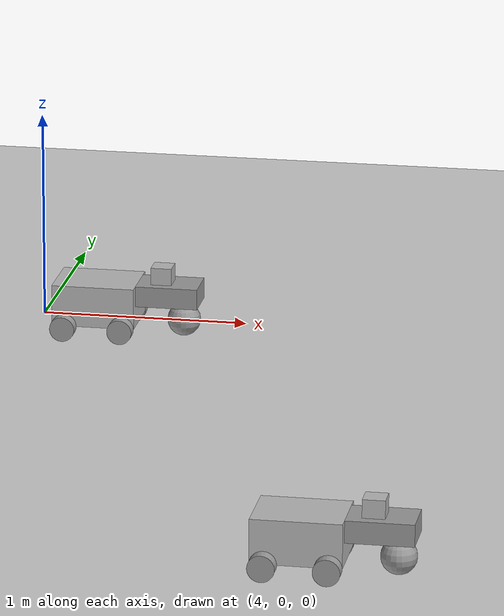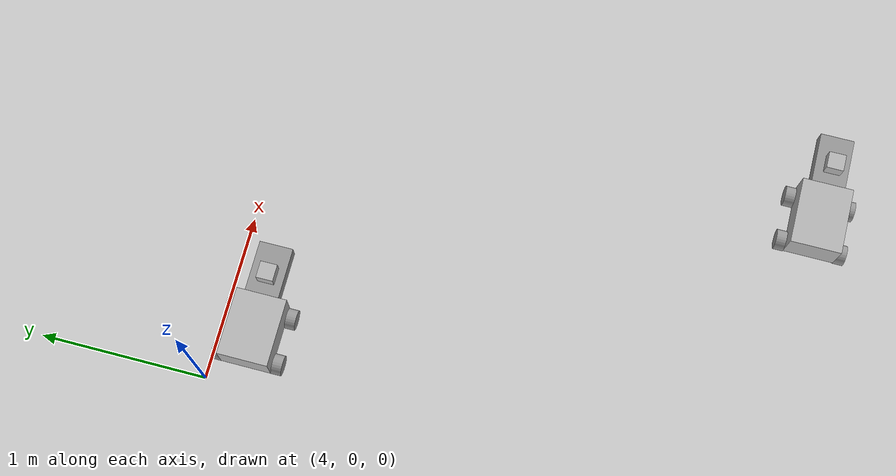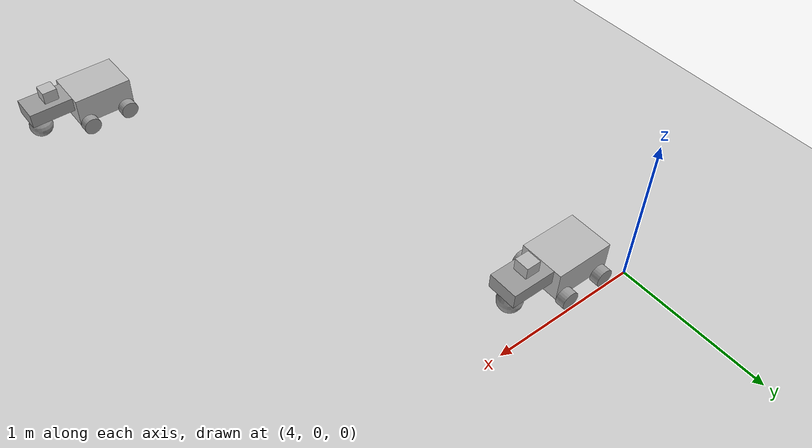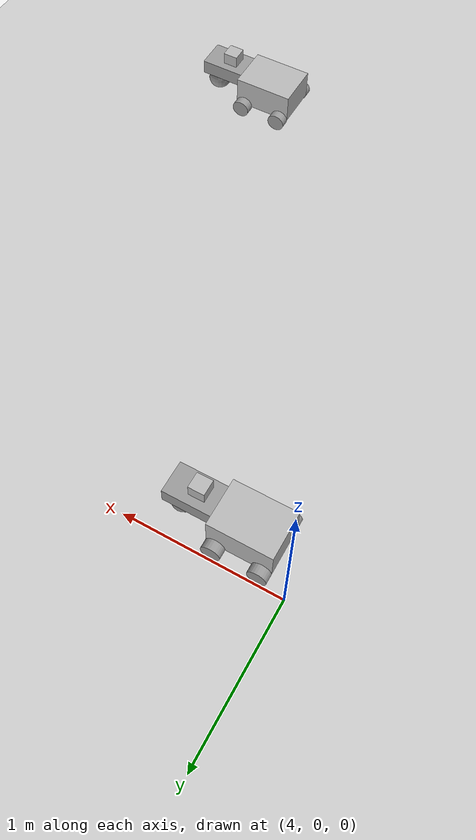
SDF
<sdf version="1.6">
 <world name="default">
  <model name="ground_plane">
   <static>1</static>
   <link name="link">
    <collision name="collision">
     <geometry><plane><normal>0 0 1</normal><size>100 100</size></plane></geometry>
     <surface><friction><ode><mu>100</mu><mu2>50</mu2></ode></friction></surface>
    </collision>
    <visual name="visual">
     <cast_shadows>0</cast_shadows>
     <geometry><plane><normal>0 0 1</normal><size>100 100</size></plane></geometry>
     <material>
      <script><uri>file://media/materials/scripts/gazebo.material</uri><name>Gazebo/Grey</name></script>
     </material>
    </visual>
   </link>
  </model>
  <model name="robot_0">
   <link name="chassis">
    <pose>0 0 0.16 0 -0 0</pose>
    <inertial>
     <mass>1</mass>
     <inertia><ixx>1</ixx><ixy>0</ixy><ixz>0</ixz><iyy>1</iyy><iyz>0</iyz><izz>1</izz></inertia>
    </inertial>
    <visual name="visual">
     <geometry><box><size>0.4 0.3 0.2</size></box></geometry>
     <material>
      <shader type="pixel"><normal_map>__default__</normal_map></shader>
      <emissive>0 0 0 1</emissive>
     </material>
    </visual>
    <collision name="collision">
     <geometry><box><size>0.4 0.3 0.2</size></box></geometry>
     <surface>
      <friction>
       <ode><mu>1</mu><mu2>1</mu2><fdir1>0 0 0</fdir1><slip1>0</slip1><slip2>0</slip2></ode>
       <torsional>
        <coefficient>1</coefficient>
        <patch_radius>0</patch_radius>
        <surface_radius>0</surface_radius>
        <use_patch_radius>1</use_patch_radius>
        <ode><slip>0</slip></ode>
       </torsional>
      </friction>
      <bounce><restitution_coefficient>0</restitution_coefficient><threshold>1e+06</threshold></bounce>
      <contact>
       <collide_without_contact>0</collide_without_contact>
       <collide_without_contact_bitmask>1</collide_without_contact_bitmask>
       <collide_bitmask>1</collide_bitmask>
       <ode>
        <soft_cfm>0</soft_cfm>
        <soft_erp>0.2</soft_erp>
        <kp>1e+13</kp>
        <kd>1</kd>
        <max_vel>0.01</max_vel>
        <min_depth>0</min_depth>
       </ode>
       <bullet>
        <split_impulse>1</split_impulse>
        <split_impulse_penetration_threshold>-0.01</split_impulse_penetration_threshold>
        <soft_cfm>0</soft_cfm>
        <soft_erp>0.2</soft_erp>
        <kp>1e+13</kp>
        <kd>1</kd>
       </bullet>
      </contact>
     </surface>
    </collision>
   </link>
   <link name="link_0_clone">
    <pose>-0.14 -0.180006 0.06 1.5707 -0 0</pose>
    <inertial>
     <mass>1</mass>
     <inertia><ixx>0.145833</ixx><ixy>0</ixy><ixz>0</ixz><iyy>0.145833</iyy><iyz>0</iyz><izz>0.125</izz></inertia>
    </inertial>
    <visual name="visual">
     <geometry><cylinder><radius>0.06</radius><length>0.06</length></cylinder></geometry>
     <material>
      <lighting>1</lighting>
      <script><uri>file://media/materials/scripts/gazebo.material</uri><name>Gazebo/Grey</name></script>
      <shader type="pixel"><normal_map>__default__</normal_map></shader>
      <ambient>0.3 0.3 0.3 1</ambient>
      <diffuse>0.7 0.7 0.7 1</diffuse>
      <specular>0.01 0.01 0.01 1</specular>
      <emissive>0 0 0 1</emissive>
     </material>
    </visual>
    <collision name="collision">
     <geometry><cylinder><radius>0.06</radius><length>0.06</length></cylinder></geometry>
     <surface>
      <friction>
       <ode><mu>1</mu><mu2>1</mu2><fdir1>0 0 0</fdir1><slip1>0</slip1><slip2>0</slip2></ode>
       <torsional>
        <coefficient>1</coefficient>
        <patch_radius>0</patch_radius>
        <surface_radius>0</surface_radius>
        <use_patch_radius>1</use_patch_radius>
        <ode><slip>0</slip></ode>
       </torsional>
      </friction>
      <bounce><restitution_coefficient>0</restitution_coefficient><threshold>1e+06</threshold></bounce>
      <contact>
       <collide_without_contact>0</collide_without_contact>
       <collide_without_contact_bitmask>1</collide_without_contact_bitmask>
       <collide_bitmask>1</collide_bitmask>
       <ode>
        <soft_cfm>0</soft_cfm>
        <soft_erp>0.2</soft_erp>
        <kp>1e+13</kp>
        <kd>1</kd>
        <max_vel>0.01</max_vel>
        <min_depth>0</min_depth>
       </ode>
       <bullet>
        <split_impulse>1</split_impulse>
        <split_impulse_penetration_threshold>-0.01</split_impulse_penetration_threshold>
        <soft_cfm>0</soft_cfm>
        <soft_erp>0.2</soft_erp>
        <kp>1e+13</kp>
        <kd>1</kd>
       </bullet>
      </contact>
     </surface>
    </collision>
   </link>
   <link name="link_0_clone_0">
    <pose>0.14 -0.180006 0.06 1.5707 -0 0</pose>
    <inertial>
     <mass>1</mass>
     <inertia><ixx>0.145833</ixx><ixy>0</ixy><ixz>0</ixz><iyy>0.145833</iyy><iyz>0</iyz><izz>0.125</izz></inertia>
    </inertial>
    <visual name="visual">
     <geometry><cylinder><radius>0.06</radius><length>0.06</length></cylinder></geometry>
     <material>
      <lighting>1</lighting>
      <script><uri>file://media/materials/scripts/gazebo.material</uri><name>Gazebo/Grey</name></script>
      <shader type="pixel"><normal_map>__default__</normal_map></shader>
      <ambient>0.3 0.3 0.3 1</ambient>
      <diffuse>0.7 0.7 0.7 1</diffuse>
      <specular>0.01 0.01 0.01 1</specular>
      <emissive>0 0 0 1</emissive>
     </material>
    </visual>
    <collision name="collision">
     <geometry><cylinder><radius>0.06</radius><length>0.06</length></cylinder></geometry>
     <surface>
      <friction>
       <ode><mu>1</mu><mu2>1</mu2><fdir1>0 0 0</fdir1><slip1>0</slip1><slip2>0</slip2></ode>
       <torsional>
        <coefficient>1</coefficient>
        <patch_radius>0</patch_radius>
        <surface_radius>0</surface_radius>
        <use_patch_radius>1</use_patch_radius>
        <ode><slip>0</slip></ode>
       </torsional>
      </friction>
      <bounce><restitution_coefficient>0</restitution_coefficient><threshold>1e+06</threshold></bounce>
      <contact>
       <collide_without_contact>0</collide_without_contact>
       <collide_without_contact_bitmask>1</collide_without_contact_bitmask>
       <collide_bitmask>1</collide_bitmask>
       <ode>
        <soft_cfm>0</soft_cfm>
        <soft_erp>0.2</soft_erp>
        <kp>1e+13</kp>
        <kd>1</kd>
        <max_vel>0.01</max_vel>
        <min_depth>0</min_depth>
       </ode>
       <bullet>
        <split_impulse>1</split_impulse>
        <split_impulse_penetration_threshold>-0.01</split_impulse_penetration_threshold>
        <soft_cfm>0</soft_cfm>
        <soft_erp>0.2</soft_erp>
        <kp>1e+13</kp>
        <kd>1</kd>
       </bullet>
      </contact>
     </surface>
    </collision>
   </link>
   <link name="link_0_clone_1">
    <pose>-0.14 0.180006 0.06 1.5707 -0 0</pose>
    <inertial>
     <mass>1</mass>
     <inertia><ixx>0.145833</ixx><ixy>0</ixy><ixz>0</ixz><iyy>0.145833</iyy><iyz>0</iyz><izz>0.125</izz></inertia>
    </inertial>
    <visual name="visual">
     <geometry><cylinder><radius>0.06</radius><length>0.06</length></cylinder></geometry>
     <material>
      <lighting>1</lighting>
      <script><uri>file://media/materials/scripts/gazebo.material</uri><name>Gazebo/Grey</name></script>
      <shader type="pixel"><normal_map>__default__</normal_map></shader>
      <ambient>0.3 0.3 0.3 1</ambient>
      <diffuse>0.7 0.7 0.7 1</diffuse>
      <specular>0.01 0.01 0.01 1</specular>
      <emissive>0 0 0 1</emissive>
     </material>
    </visual>
    <collision name="collision">
     <geometry><cylinder><radius>0.06</radius><length>0.06</length></cylinder></geometry>
     <surface>
      <friction>
       <ode><mu>1</mu><mu2>1</mu2><fdir1>0 0 0</fdir1><slip1>0</slip1><slip2>0</slip2></ode>
       <torsional>
        <coefficient>1</coefficient>
        <patch_radius>0</patch_radius>
        <surface_radius>0</surface_radius>
        <use_patch_radius>1</use_patch_radius>
        <ode><slip>0</slip></ode>
       </torsional>
      </friction>
      <bounce><restitution_coefficient>0</restitution_coefficient><threshold>1e+06</threshold></bounce>
      <contact>
       <collide_without_contact>0</collide_without_contact>
       <collide_without_contact_bitmask>1</collide_without_contact_bitmask>
       <collide_bitmask>1</collide_bitmask>
       <ode>
        <soft_cfm>0</soft_cfm>
        <soft_erp>0.2</soft_erp>
        <kp>1e+13</kp>
        <kd>1</kd>
        <max_vel>0.01</max_vel>
        <min_depth>0</min_depth>
       </ode>
       <bullet>
        <split_impulse>1</split_impulse>
        <split_impulse_penetration_threshold>-0.01</split_impulse_penetration_threshold>
        <soft_cfm>0</soft_cfm>
        <soft_erp>0.2</soft_erp>
        <kp>1e+13</kp>
        <kd>1</kd>
       </bullet>
      </contact>
     </surface>
    </collision>
   </link>
   <link name="link_0_clone_2">
    <pose>0.14 0.180006 0.06 1.5707 -0 0</pose>
    <inertial>
     <mass>1</mass>
     <inertia><ixx>0.145833</ixx><ixy>0</ixy><ixz>0</ixz><iyy>0.145833</iyy><iyz>0</iyz><izz>0.125</izz></inertia>
    </inertial>
    <visual name="visual">
     <geometry><cylinder><radius>0.06</radius><length>0.06</length></cylinder></geometry>
     <material>
      <lighting>1</lighting>
      <script><uri>file://media/materials/scripts/gazebo.material</uri><name>Gazebo/Grey</name></script>
      <shader type="pixel"><normal_map>__default__</normal_map></shader>
      <ambient>0.3 0.3 0.3 1</ambient>
      <diffuse>0.7 0.7 0.7 1</diffuse>
      <specular>0.01 0.01 0.01 1</specular>
      <emissive>0 0 0 1</emissive>
     </material>
    </visual>
    <collision name="collision">
     <geometry><cylinder><radius>0.06</radius><length>0.06</length></cylinder></geometry>
     <surface>
      <friction>
       <ode><mu>1</mu><mu2>1</mu2><fdir1>0 0 0</fdir1><slip1>0</slip1><slip2>0</slip2></ode>
       <torsional>
        <coefficient>1</coefficient>
        <patch_radius>0</patch_radius>
        <surface_radius>0</surface_radius>
        <use_patch_radius>1</use_patch_radius>
        <ode><slip>0</slip></ode>
       </torsional>
      </friction>
      <bounce><restitution_coefficient>0</restitution_coefficient><threshold>1e+06</threshold></bounce>
      <contact>
       <collide_without_contact>0</collide_without_contact>
       <collide_without_contact_bitmask>1</collide_without_contact_bitmask>
       <collide_bitmask>1</collide_bitmask>
       <ode>
        <soft_cfm>0</soft_cfm>
        <soft_erp>0.2</soft_erp>
        <kp>1e+13</kp>
        <kd>1</kd>
        <max_vel>0.01</max_vel>
        <min_depth>0</min_depth>
       </ode>
       <bullet>
        <split_impulse>1</split_impulse>
        <split_impulse_penetration_threshold>-0.01</split_impulse_penetration_threshold>
        <soft_cfm>0</soft_cfm>
        <soft_erp>0.2</soft_erp>
        <kp>1e+13</kp>
        <kd>1</kd>
       </bullet>
      </contact>
     </surface>
    </collision>
   </link>
   <link name="link_1_clone">
    <pose>0.35 0 0.21 0 -0 0</pose>
    <inertial>
     <mass>1</mass>
     <inertia>
      <ixx>0.166667</ixx>
      <ixy>0</ixy>
      <ixz>0</ixz>
      <iyy>0.166667</iyy>
      <iyz>0</iyz>
      <izz>0.166667</izz>
     </inertia>
    </inertial>
    <visual name="visual">
     <geometry><box><size>0.3 0.2 0.1</size></box></geometry>
     <material>
      <lighting>1</lighting>
      <script><uri>file://media/materials/scripts/gazebo.material</uri><name>Gazebo/Grey</name></script>
      <shader type="pixel"><normal_map>__default__</normal_map></shader>
      <ambient>0.3 0.3 0.3 1</ambient>
      <diffuse>0.7 0.7 0.7 1</diffuse>
      <specular>0.01 0.01 0.01 1</specular>
      <emissive>0 0 0 1</emissive>
     </material>
    </visual>
    <collision name="collision">
     <geometry><box><size>0.3 0.2 0.1</size></box></geometry>
     <surface>
      <friction>
       <ode><mu>1</mu><mu2>1</mu2><fdir1>0 0 0</fdir1><slip1>0</slip1><slip2>0</slip2></ode>
       <torsional>
        <coefficient>1</coefficient>
        <patch_radius>0</patch_radius>
        <surface_radius>0</surface_radius>
        <use_patch_radius>1</use_patch_radius>
        <ode><slip>0</slip></ode>
       </torsional>
      </friction>
      <bounce><restitution_coefficient>0</restitution_coefficient><threshold>1e+06</threshold></bounce>
      <contact>
       <collide_without_contact>0</collide_without_contact>
       <collide_without_contact_bitmask>1</collide_without_contact_bitmask>
       <collide_bitmask>1</collide_bitmask>
       <ode>
        <soft_cfm>0</soft_cfm>
        <soft_erp>0.2</soft_erp>
        <kp>1e+13</kp>
        <kd>1</kd>
        <max_vel>0.01</max_vel>
        <min_depth>0</min_depth>
       </ode>
       <bullet>
        <split_impulse>1</split_impulse>
        <split_impulse_penetration_threshold>-0.01</split_impulse_penetration_threshold>
        <soft_cfm>0</soft_cfm>
        <soft_erp>0.2</soft_erp>
        <kp>1e+13</kp>
        <kd>1</kd>
       </bullet>
      </contact>
     </surface>
    </collision>
   </link>
   <link name="link_2_clone">
    <pose>0.42 0 0.08 0 -0 0</pose>
    <inertial>
     <mass>1</mass>
     <inertia><ixx>0.1</ixx><ixy>0</ixy><ixz>0</ixz><iyy>0.1</iyy><iyz>0</iyz><izz>0.1</izz></inertia>
    </inertial>
    <visual name="visual">
     <geometry><sphere><radius>0.08</radius></sphere></geometry>
     <material>
      <lighting>1</lighting>
      <script><uri>file://media/materials/scripts/gazebo.material</uri><name>Gazebo/Grey</name></script>
      <shader type="pixel"><normal_map>__default__</normal_map></shader>
      <ambient>0.3 0.3 0.3 1</ambient>
      <diffuse>0.7 0.7 0.7 1</diffuse>
      <specular>0.01 0.01 0.01 1</specular>
      <emissive>0 0 0 1</emissive>
     </material>
    </visual>
    <collision name="collision">
     <geometry><sphere><radius>0.08</radius></sphere></geometry>
     <surface>
      <friction>
       <ode><mu>1</mu><mu2>1</mu2><fdir1>0 0 0</fdir1><slip1>0</slip1><slip2>0</slip2></ode>
       <torsional>
        <coefficient>1</coefficient>
        <patch_radius>0</patch_radius>
        <surface_radius>0</surface_radius>
        <use_patch_radius>1</use_patch_radius>
        <ode><slip>0</slip></ode>
       </torsional>
      </friction>
      <bounce><restitution_coefficient>0</restitution_coefficient><threshold>1e+06</threshold></bounce>
      <contact>
       <collide_without_contact>0</collide_without_contact>
       <collide_without_contact_bitmask>1</collide_without_contact_bitmask>
       <collide_bitmask>1</collide_bitmask>
       <ode>
        <soft_cfm>0</soft_cfm>
        <soft_erp>0.2</soft_erp>
        <kp>1e+13</kp>
        <kd>1</kd>
        <max_vel>0.01</max_vel>
        <min_depth>0</min_depth>
       </ode>
       <bullet>
        <split_impulse>1</split_impulse>
        <split_impulse_penetration_threshold>-0.01</split_impulse_penetration_threshold>
        <soft_cfm>0</soft_cfm>
        <soft_erp>0.2</soft_erp>
        <kp>1e+13</kp>
        <kd>1</kd>
       </bullet>
      </contact>
     </surface>
    </collision>
   </link>
   <model name="depth_camera">
    <link name="link">
     <pose>0 0 0.05 0 -0 0</pose>
     <inertial>
      <mass>0.1</mass>
      <inertia>
       <ixx>0.000166667</ixx>
       <iyy>0.000166667</iyy>
       <izz>0.000166667</izz>
       <ixy>0</ixy>
       <ixz>0</ixz>
       <iyz>0</iyz>
      </inertia>
     </inertial>
     <collision name="collision"><geometry><box><size>0.1 0.1 0.1</size></box></geometry></collision>
     <visual name="visual"><geometry><box><size>0.1 0.1 0.1</size></box></geometry></visual>
     <sensor name="camera" type="depth">
      <camera name="__default__">
       <horizontal_fov>1.047</horizontal_fov>
       <image><width>320</width><height>240</height></image>
       <clip><near>0.1</near><far>100</far></clip>
      </camera>
      <always_on>1</always_on>
      <update_rate>30</update_rate>
      <visualize>1</visualize>
     </sensor>
    </link>
    <pose>0.31707 -0.004098 0.243439 0 -0 0</pose>
   </model>
   <joint name="chassis_JOINT_0" type="revolute">
    <parent>chassis</parent>
    <child>link_0_clone_0</child>
    <axis>
     <xyz>0 0 -1</xyz>
     <use_parent_model_frame>0</use_parent_model_frame>
     <limit>
      <lower>-1.79769e+308</lower>
      <upper>1.79769e+308</upper>
      <effort>-1</effort>
      <velocity>-1</velocity>
     </limit>
     <dynamics>
      <spring_reference>0</spring_reference>
      <spring_stiffness>0</spring_stiffness>
      <damping>0</damping>
     </dynamics>
    </axis>
    <physics>
     <ode><limit><cfm>0</cfm><erp>0.2</erp></limit><suspension><cfm>0</cfm><erp>0.2</erp></suspension></ode>
    </physics>
   </joint>
   <joint name="chassis_JOINT_1" type="revolute">
    <parent>chassis</parent>
    <child>link_0_clone</child>
    <axis>
     <xyz>0 0 -1</xyz>
     <use_parent_model_frame>0</use_parent_model_frame>
     <limit>
      <lower>-1.79769e+308</lower>
      <upper>1.79769e+308</upper>
      <effort>-1</effort>
      <velocity>-1</velocity>
     </limit>
     <dynamics>
      <spring_reference>0</spring_reference>
      <spring_stiffness>0</spring_stiffness>
      <damping>0</damping>
     </dynamics>
    </axis>
    <physics>
     <ode><limit><cfm>0</cfm><erp>0.2</erp></limit><suspension><cfm>0</cfm><erp>0.2</erp></suspension></ode>
    </physics>
   </joint>
   <joint name="chassis_JOINT_2" type="revolute">
    <parent>chassis</parent>
    <child>link_0_clone_2</child>
    <axis>
     <xyz>0 0 1</xyz>
     <use_parent_model_frame>0</use_parent_model_frame>
     <limit>
      <lower>-1.79769e+308</lower>
      <upper>1.79769e+308</upper>
      <effort>-1</effort>
      <velocity>-1</velocity>
     </limit>
     <dynamics>
      <spring_reference>0</spring_reference>
      <spring_stiffness>0</spring_stiffness>
      <damping>0</damping>
     </dynamics>
    </axis>
    <physics>
     <ode><limit><cfm>0</cfm><erp>0.2</erp></limit><suspension><cfm>0</cfm><erp>0.2</erp></suspension></ode>
    </physics>
   </joint>
   <joint name="chassis_JOINT_3" type="revolute">
    <parent>chassis</parent>
    <child>link_0_clone_1</child>
    <axis>
     <xyz>0 0 1</xyz>
     <use_parent_model_frame>0</use_parent_model_frame>
     <limit>
      <lower>-1.79769e+308</lower>
      <upper>1.79769e+308</upper>
      <effort>-1</effort>
      <velocity>-1</velocity>
     </limit>
     <dynamics>
      <spring_reference>0</spring_reference>
      <spring_stiffness>0</spring_stiffness>
      <damping>0</damping>
     </dynamics>
    </axis>
    <physics>
     <ode><limit><cfm>0</cfm><erp>0.2</erp></limit><suspension><cfm>0</cfm><erp>0.2</erp></suspension></ode>
    </physics>
   </joint>
   <joint name="chassis_JOINT_4" type="fixed">
    <parent>chassis</parent>
    <child>link_1_clone</child>
    <physics>
     <ode><limit><cfm>0</cfm><erp>0.2</erp></limit><suspension><cfm>0</cfm><erp>0.2</erp></suspension></ode>
    </physics>
   </joint>
   <joint name="link_JOINT_6" type="fixed">
    <parent>depth_camera::link</parent>
    <child>link_1_clone</child>
    <physics>
     <ode><limit><cfm>0</cfm><erp>0.2</erp></limit><suspension><cfm>0</cfm><erp>0.2</erp></suspension></ode>
    </physics>
   </joint>
   <joint name="link_1_clone_JOINT_5" type="ball">
    <parent>link_1_clone</parent>
    <child>link_2_clone</child>
    <physics>
     <ode><limit><cfm>0</cfm><erp>0.2</erp></limit><suspension><cfm>0</cfm><erp>0.2</erp></suspension></ode>
    </physics>
   </joint>
   <static>1</static>
   <pose>4.31303 -0.218613 0 0 -0 0</pose>
  </model>
  <model name="robot_1">
   <link name="chassis">
    <pose>0 0 0.16 0 -0 0</pose>
    <inertial>
     <mass>1</mass>
     <inertia><ixx>1</ixx><ixy>0</ixy><ixz>0</ixz><iyy>1</iyy><iyz>0</iyz><izz>1</izz></inertia>
    </inertial>
    <visual name="visual">
     <geometry><box><size>0.4 0.3 0.2</size></box></geometry>
     <material>
      <shader type="pixel"><normal_map>__default__</normal_map></shader>
      <emissive>0 0 0 1</emissive>
     </material>
    </visual>
    <collision name="collision">
     <geometry><box><size>0.4 0.3 0.2</size></box></geometry>
     <surface>
      <friction>
       <ode><mu>1</mu><mu2>1</mu2><fdir1>0 0 0</fdir1><slip1>0</slip1><slip2>0</slip2></ode>
       <torsional>
        <coefficient>1</coefficient>
        <patch_radius>0</patch_radius>
        <surface_radius>0</surface_radius>
        <use_patch_radius>1</use_patch_radius>
        <ode><slip>0</slip></ode>
       </torsional>
      </friction>
      <bounce><restitution_coefficient>0</restitution_coefficient><threshold>1e+06</threshold></bounce>
      <contact>
       <collide_without_contact>0</collide_without_contact>
       <collide_without_contact_bitmask>1</collide_without_contact_bitmask>
       <collide_bitmask>1</collide_bitmask>
       <ode>
        <soft_cfm>0</soft_cfm>
        <soft_erp>0.2</soft_erp>
        <kp>1e+13</kp>
        <kd>1</kd>
        <max_vel>0.01</max_vel>
        <min_depth>0</min_depth>
       </ode>
       <bullet>
        <split_impulse>1</split_impulse>
        <split_impulse_penetration_threshold>-0.01</split_impulse_penetration_threshold>
        <soft_cfm>0</soft_cfm>
        <soft_erp>0.2</soft_erp>
        <kp>1e+13</kp>
        <kd>1</kd>
       </bullet>
      </contact>
     </surface>
    </collision>
   </link>
   <link name="link_0_clone">
    <pose>-0.14 -0.180006 0.06 1.5707 -0 0</pose>
    <inertial>
     <mass>1</mass>
     <inertia><ixx>0.145833</ixx><ixy>0</ixy><ixz>0</ixz><iyy>0.145833</iyy><iyz>0</iyz><izz>0.125</izz></inertia>
    </inertial>
    <visual name="visual">
     <geometry><cylinder><radius>0.06</radius><length>0.06</length></cylinder></geometry>
     <material>
      <lighting>1</lighting>
      <script><uri>file://media/materials/scripts/gazebo.material</uri><name>Gazebo/Grey</name></script>
      <shader type="pixel"><normal_map>__default__</normal_map></shader>
      <ambient>0.3 0.3 0.3 1</ambient>
      <diffuse>0.7 0.7 0.7 1</diffuse>
      <specular>0.01 0.01 0.01 1</specular>
      <emissive>0 0 0 1</emissive>
     </material>
    </visual>
    <collision name="collision">
     <geometry><cylinder><radius>0.06</radius><length>0.06</length></cylinder></geometry>
     <surface>
      <friction>
       <ode><mu>1</mu><mu2>1</mu2><fdir1>0 0 0</fdir1><slip1>0</slip1><slip2>0</slip2></ode>
       <torsional>
        <coefficient>1</coefficient>
        <patch_radius>0</patch_radius>
        <surface_radius>0</surface_radius>
        <use_patch_radius>1</use_patch_radius>
        <ode><slip>0</slip></ode>
       </torsional>
      </friction>
      <bounce><restitution_coefficient>0</restitution_coefficient><threshold>1e+06</threshold></bounce>
      <contact>
       <collide_without_contact>0</collide_without_contact>
       <collide_without_contact_bitmask>1</collide_without_contact_bitmask>
       <collide_bitmask>1</collide_bitmask>
       <ode>
        <soft_cfm>0</soft_cfm>
        <soft_erp>0.2</soft_erp>
        <kp>1e+13</kp>
        <kd>1</kd>
        <max_vel>0.01</max_vel>
        <min_depth>0</min_depth>
       </ode>
       <bullet>
        <split_impulse>1</split_impulse>
        <split_impulse_penetration_threshold>-0.01</split_impulse_penetration_threshold>
        <soft_cfm>0</soft_cfm>
        <soft_erp>0.2</soft_erp>
        <kp>1e+13</kp>
        <kd>1</kd>
       </bullet>
      </contact>
     </surface>
    </collision>
   </link>
   <link name="link_0_clone_0">
    <pose>0.14 -0.180006 0.06 1.5707 -0 0</pose>
    <inertial>
     <mass>1</mass>
     <inertia><ixx>0.145833</ixx><ixy>0</ixy><ixz>0</ixz><iyy>0.145833</iyy><iyz>0</iyz><izz>0.125</izz></inertia>
    </inertial>
    <visual name="visual">
     <geometry><cylinder><radius>0.06</radius><length>0.06</length></cylinder></geometry>
     <material>
      <lighting>1</lighting>
      <script><uri>file://media/materials/scripts/gazebo.material</uri><name>Gazebo/Grey</name></script>
      <shader type="pixel"><normal_map>__default__</normal_map></shader>
      <ambient>0.3 0.3 0.3 1</ambient>
      <diffuse>0.7 0.7 0.7 1</diffuse>
      <specular>0.01 0.01 0.01 1</specular>
      <emissive>0 0 0 1</emissive>
     </material>
    </visual>
    <collision name="collision">
     <geometry><cylinder><radius>0.06</radius><length>0.06</length></cylinder></geometry>
     <surface>
      <friction>
       <ode><mu>1</mu><mu2>1</mu2><fdir1>0 0 0</fdir1><slip1>0</slip1><slip2>0</slip2></ode>
       <torsional>
        <coefficient>1</coefficient>
        <patch_radius>0</patch_radius>
        <surface_radius>0</surface_radius>
        <use_patch_radius>1</use_patch_radius>
        <ode><slip>0</slip></ode>
       </torsional>
      </friction>
      <bounce><restitution_coefficient>0</restitution_coefficient><threshold>1e+06</threshold></bounce>
      <contact>
       <collide_without_contact>0</collide_without_contact>
       <collide_without_contact_bitmask>1</collide_without_contact_bitmask>
       <collide_bitmask>1</collide_bitmask>
       <ode>
        <soft_cfm>0</soft_cfm>
        <soft_erp>0.2</soft_erp>
        <kp>1e+13</kp>
        <kd>1</kd>
        <max_vel>0.01</max_vel>
        <min_depth>0</min_depth>
       </ode>
       <bullet>
        <split_impulse>1</split_impulse>
        <split_impulse_penetration_threshold>-0.01</split_impulse_penetration_threshold>
        <soft_cfm>0</soft_cfm>
        <soft_erp>0.2</soft_erp>
        <kp>1e+13</kp>
        <kd>1</kd>
       </bullet>
      </contact>
     </surface>
    </collision>
   </link>
   <link name="link_0_clone_1">
    <pose>-0.14 0.180006 0.06 1.5707 -0 0</pose>
    <inertial>
     <mass>1</mass>
     <inertia><ixx>0.145833</ixx><ixy>0</ixy><ixz>0</ixz><iyy>0.145833</iyy><iyz>0</iyz><izz>0.125</izz></inertia>
    </inertial>
    <visual name="visual">
     <geometry><cylinder><radius>0.06</radius><length>0.06</length></cylinder></geometry>
     <material>
      <lighting>1</lighting>
      <script><uri>file://media/materials/scripts/gazebo.material</uri><name>Gazebo/Grey</name></script>
      <shader type="pixel"><normal_map>__default__</normal_map></shader>
      <ambient>0.3 0.3 0.3 1</ambient>
      <diffuse>0.7 0.7 0.7 1</diffuse>
      <specular>0.01 0.01 0.01 1</specular>
      <emissive>0 0 0 1</emissive>
     </material>
    </visual>
    <collision name="collision">
     <geometry><cylinder><radius>0.06</radius><length>0.06</length></cylinder></geometry>
     <surface>
      <friction>
       <ode><mu>1</mu><mu2>1</mu2><fdir1>0 0 0</fdir1><slip1>0</slip1><slip2>0</slip2></ode>
       <torsional>
        <coefficient>1</coefficient>
        <patch_radius>0</patch_radius>
        <surface_radius>0</surface_radius>
        <use_patch_radius>1</use_patch_radius>
        <ode><slip>0</slip></ode>
       </torsional>
      </friction>
      <bounce><restitution_coefficient>0</restitution_coefficient><threshold>1e+06</threshold></bounce>
      <contact>
       <collide_without_contact>0</collide_without_contact>
       <collide_without_contact_bitmask>1</collide_without_contact_bitmask>
       <collide_bitmask>1</collide_bitmask>
       <ode>
        <soft_cfm>0</soft_cfm>
        <soft_erp>0.2</soft_erp>
        <kp>1e+13</kp>
        <kd>1</kd>
        <max_vel>0.01</max_vel>
        <min_depth>0</min_depth>
       </ode>
       <bullet>
        <split_impulse>1</split_impulse>
        <split_impulse_penetration_threshold>-0.01</split_impulse_penetration_threshold>
        <soft_cfm>0</soft_cfm>
        <soft_erp>0.2</soft_erp>
        <kp>1e+13</kp>
        <kd>1</kd>
       </bullet>
      </contact>
     </surface>
    </collision>
   </link>
   <link name="link_0_clone_2">
    <pose>0.14 0.180006 0.06 1.5707 -0 0</pose>
    <inertial>
     <mass>1</mass>
     <inertia><ixx>0.145833</ixx><ixy>0</ixy><ixz>0</ixz><iyy>0.145833</iyy><iyz>0</iyz><izz>0.125</izz></inertia>
    </inertial>
    <visual name="visual">
     <geometry><cylinder><radius>0.06</radius><length>0.06</length></cylinder></geometry>
     <material>
      <lighting>1</lighting>
      <script><uri>file://media/materials/scripts/gazebo.material</uri><name>Gazebo/Grey</name></script>
      <shader type="pixel"><normal_map>__default__</normal_map></shader>
      <ambient>0.3 0.3 0.3 1</ambient>
      <diffuse>0.7 0.7 0.7 1</diffuse>
      <specular>0.01 0.01 0.01 1</specular>
      <emissive>0 0 0 1</emissive>
     </material>
    </visual>
    <collision name="collision">
     <geometry><cylinder><radius>0.06</radius><length>0.06</length></cylinder></geometry>
     <surface>
      <friction>
       <ode><mu>1</mu><mu2>1</mu2><fdir1>0 0 0</fdir1><slip1>0</slip1><slip2>0</slip2></ode>
       <torsional>
        <coefficient>1</coefficient>
        <patch_radius>0</patch_radius>
        <surface_radius>0</surface_radius>
        <use_patch_radius>1</use_patch_radius>
        <ode><slip>0</slip></ode>
       </torsional>
      </friction>
      <bounce><restitution_coefficient>0</restitution_coefficient><threshold>1e+06</threshold></bounce>
      <contact>
       <collide_without_contact>0</collide_without_contact>
       <collide_without_contact_bitmask>1</collide_without_contact_bitmask>
       <collide_bitmask>1</collide_bitmask>
       <ode>
        <soft_cfm>0</soft_cfm>
        <soft_erp>0.2</soft_erp>
        <kp>1e+13</kp>
        <kd>1</kd>
        <max_vel>0.01</max_vel>
        <min_depth>0</min_depth>
       </ode>
       <bullet>
        <split_impulse>1</split_impulse>
        <split_impulse_penetration_threshold>-0.01</split_impulse_penetration_threshold>
        <soft_cfm>0</soft_cfm>
        <soft_erp>0.2</soft_erp>
        <kp>1e+13</kp>
        <kd>1</kd>
       </bullet>
      </contact>
     </surface>
    </collision>
   </link>
   <link name="link_1_clone">
    <pose>0.35 0 0.21 0 -0 0</pose>
    <inertial>
     <mass>1</mass>
     <inertia>
      <ixx>0.166667</ixx>
      <ixy>0</ixy>
      <ixz>0</ixz>
      <iyy>0.166667</iyy>
      <iyz>0</iyz>
      <izz>0.166667</izz>
     </inertia>
    </inertial>
    <visual name="visual">
     <geometry><box><size>0.3 0.2 0.1</size></box></geometry>
     <material>
      <lighting>1</lighting>
      <script><uri>file://media/materials/scripts/gazebo.material</uri><name>Gazebo/Grey</name></script>
      <shader type="pixel"><normal_map>__default__</normal_map></shader>
      <ambient>0.3 0.3 0.3 1</ambient>
      <diffuse>0.7 0.7 0.7 1</diffuse>
      <specular>0.01 0.01 0.01 1</specular>
      <emissive>0 0 0 1</emissive>
     </material>
    </visual>
    <collision name="collision">
     <geometry><box><size>0.3 0.2 0.1</size></box></geometry>
     <surface>
      <friction>
       <ode><mu>1</mu><mu2>1</mu2><fdir1>0 0 0</fdir1><slip1>0</slip1><slip2>0</slip2></ode>
       <torsional>
        <coefficient>1</coefficient>
        <patch_radius>0</patch_radius>
        <surface_radius>0</surface_radius>
        <use_patch_radius>1</use_patch_radius>
        <ode><slip>0</slip></ode>
       </torsional>
      </friction>
      <bounce><restitution_coefficient>0</restitution_coefficient><threshold>1e+06</threshold></bounce>
      <contact>
       <collide_without_contact>0</collide_without_contact>
       <collide_without_contact_bitmask>1</collide_without_contact_bitmask>
       <collide_bitmask>1</collide_bitmask>
       <ode>
        <soft_cfm>0</soft_cfm>
        <soft_erp>0.2</soft_erp>
        <kp>1e+13</kp>
        <kd>1</kd>
        <max_vel>0.01</max_vel>
        <min_depth>0</min_depth>
       </ode>
       <bullet>
        <split_impulse>1</split_impulse>
        <split_impulse_penetration_threshold>-0.01</split_impulse_penetration_threshold>
        <soft_cfm>0</soft_cfm>
        <soft_erp>0.2</soft_erp>
        <kp>1e+13</kp>
        <kd>1</kd>
       </bullet>
      </contact>
     </surface>
    </collision>
   </link>
   <link name="link_2_clone">
    <pose>0.42 0 0.08 0 -0 0</pose>
    <inertial>
     <mass>1</mass>
     <inertia><ixx>0.1</ixx><ixy>0</ixy><ixz>0</ixz><iyy>0.1</iyy><iyz>0</iyz><izz>0.1</izz></inertia>
    </inertial>
    <visual name="visual">
     <geometry><sphere><radius>0.08</radius></sphere></geometry>
     <material>
      <lighting>1</lighting>
      <script><uri>file://media/materials/scripts/gazebo.material</uri><name>Gazebo/Grey</name></script>
      <shader type="pixel"><normal_map>__default__</normal_map></shader>
      <ambient>0.3 0.3 0.3 1</ambient>
      <diffuse>0.7 0.7 0.7 1</diffuse>
      <specular>0.01 0.01 0.01 1</specular>
      <emissive>0 0 0 1</emissive>
     </material>
    </visual>
    <collision name="collision">
     <geometry><sphere><radius>0.08</radius></sphere></geometry>
     <surface>
      <friction>
       <ode><mu>1</mu><mu2>1</mu2><fdir1>0 0 0</fdir1><slip1>0</slip1><slip2>0</slip2></ode>
       <torsional>
        <coefficient>1</coefficient>
        <patch_radius>0</patch_radius>
        <surface_radius>0</surface_radius>
        <use_patch_radius>1</use_patch_radius>
        <ode><slip>0</slip></ode>
       </torsional>
      </friction>
      <bounce><restitution_coefficient>0</restitution_coefficient><threshold>1e+06</threshold></bounce>
      <contact>
       <collide_without_contact>0</collide_without_contact>
       <collide_without_contact_bitmask>1</collide_without_contact_bitmask>
       <collide_bitmask>1</collide_bitmask>
       <ode>
        <soft_cfm>0</soft_cfm>
        <soft_erp>0.2</soft_erp>
        <kp>1e+13</kp>
        <kd>1</kd>
        <max_vel>0.01</max_vel>
        <min_depth>0</min_depth>
       </ode>
       <bullet>
        <split_impulse>1</split_impulse>
        <split_impulse_penetration_threshold>-0.01</split_impulse_penetration_threshold>
        <soft_cfm>0</soft_cfm>
        <soft_erp>0.2</soft_erp>
        <kp>1e+13</kp>
        <kd>1</kd>
       </bullet>
      </contact>
     </surface>
    </collision>
   </link>
   <model name="depth_camera">
    <link name="link">
     <pose>0 0 0.05 0 -0 0</pose>
     <inertial>
      <mass>0.1</mass>
      <inertia>
       <ixx>0.000166667</ixx>
       <iyy>0.000166667</iyy>
       <izz>0.000166667</izz>
       <ixy>0</ixy>
       <ixz>0</ixz>
       <iyz>0</iyz>
      </inertia>
     </inertial>
     <collision name="collision"><geometry><box><size>0.1 0.1 0.1</size></box></geometry></collision>
     <visual name="visual"><geometry><box><size>0.1 0.1 0.1</size></box></geometry></visual>
     <sensor name="camera" type="depth">
      <camera name="__default__">
       <horizontal_fov>1.047</horizontal_fov>
       <image><width>320</width><height>240</height></image>
       <clip><near>0.1</near><far>100</far></clip>
      </camera>
      <always_on>1</always_on>
      <update_rate>30</update_rate>
      <visualize>1</visualize>
     </sensor>
    </link>
    <pose>0.31707 -0.004098 0.243439 0 -0 0</pose>
   </model>
   <joint name="chassis_JOINT_0" type="revolute">
    <parent>chassis</parent>
    <child>link_0_clone_0</child>
    <axis>
     <xyz>0 0 -1</xyz>
     <use_parent_model_frame>0</use_parent_model_frame>
     <limit>
      <lower>-1.79769e+308</lower>
      <upper>1.79769e+308</upper>
      <effort>-1</effort>
      <velocity>-1</velocity>
     </limit>
     <dynamics>
      <spring_reference>0</spring_reference>
      <spring_stiffness>0</spring_stiffness>
      <damping>0</damping>
     </dynamics>
    </axis>
    <physics>
     <ode><limit><cfm>0</cfm><erp>0.2</erp></limit><suspension><cfm>0</cfm><erp>0.2</erp></suspension></ode>
    </physics>
   </joint>
   <joint name="chassis_JOINT_1" type="revolute">
    <parent>chassis</parent>
    <child>link_0_clone</child>
    <axis>
     <xyz>0 0 -1</xyz>
     <use_parent_model_frame>0</use_parent_model_frame>
     <limit>
      <lower>-1.79769e+308</lower>
      <upper>1.79769e+308</upper>
      <effort>-1</effort>
      <velocity>-1</velocity>
     </limit>
     <dynamics>
      <spring_reference>0</spring_reference>
      <spring_stiffness>0</spring_stiffness>
      <damping>0</damping>
     </dynamics>
    </axis>
    <physics>
     <ode><limit><cfm>0</cfm><erp>0.2</erp></limit><suspension><cfm>0</cfm><erp>0.2</erp></suspension></ode>
    </physics>
   </joint>
   <joint name="chassis_JOINT_2" type="revolute">
    <parent>chassis</parent>
    <child>link_0_clone_2</child>
    <axis>
     <xyz>0 0 1</xyz>
     <use_parent_model_frame>0</use_parent_model_frame>
     <limit>
      <lower>-1.79769e+308</lower>
      <upper>1.79769e+308</upper>
      <effort>-1</effort>
      <velocity>-1</velocity>
     </limit>
     <dynamics>
      <spring_reference>0</spring_reference>
      <spring_stiffness>0</spring_stiffness>
      <damping>0</damping>
     </dynamics>
    </axis>
    <physics>
     <ode><limit><cfm>0</cfm><erp>0.2</erp></limit><suspension><cfm>0</cfm><erp>0.2</erp></suspension></ode>
    </physics>
   </joint>
   <joint name="chassis_JOINT_3" type="revolute">
    <parent>chassis</parent>
    <child>link_0_clone_1</child>
    <axis>
     <xyz>0 0 1</xyz>
     <use_parent_model_frame>0</use_parent_model_frame>
     <limit>
      <lower>-1.79769e+308</lower>
      <upper>1.79769e+308</upper>
      <effort>-1</effort>
      <velocity>-1</velocity>
     </limit>
     <dynamics>
      <spring_reference>0</spring_reference>
      <spring_stiffness>0</spring_stiffness>
      <damping>0</damping>
     </dynamics>
    </axis>
    <physics>
     <ode><limit><cfm>0</cfm><erp>0.2</erp></limit><suspension><cfm>0</cfm><erp>0.2</erp></suspension></ode>
    </physics>
   </joint>
   <joint name="chassis_JOINT_4" type="fixed">
    <parent>chassis</parent>
    <child>link_1_clone</child>
    <physics>
     <ode><limit><cfm>0</cfm><erp>0.2</erp></limit><suspension><cfm>0</cfm><erp>0.2</erp></suspension></ode>
    </physics>
   </joint>
   <joint name="link_JOINT_6" type="fixed">
    <parent>depth_camera::link</parent>
    <child>link_1_clone</child>
    <physics>
     <ode><limit><cfm>0</cfm><erp>0.2</erp></limit><suspension><cfm>0</cfm><erp>0.2</erp></suspension></ode>
    </physics>
   </joint>
   <joint name="link_1_clone_JOINT_5" type="ball">
    <parent>link_1_clone</parent>
    <child>link_2_clone</child>
    <physics>
     <ode><limit><cfm>0</cfm><erp>0.2</erp></limit><suspension><cfm>0</cfm><erp>0.2</erp></suspension></ode>
    </physics>
   </joint>
   <static>1</static>
   <pose>5.79721 -3.24917 0 0 -0 0</pose>
  </model>
 </world>
</sdf>
